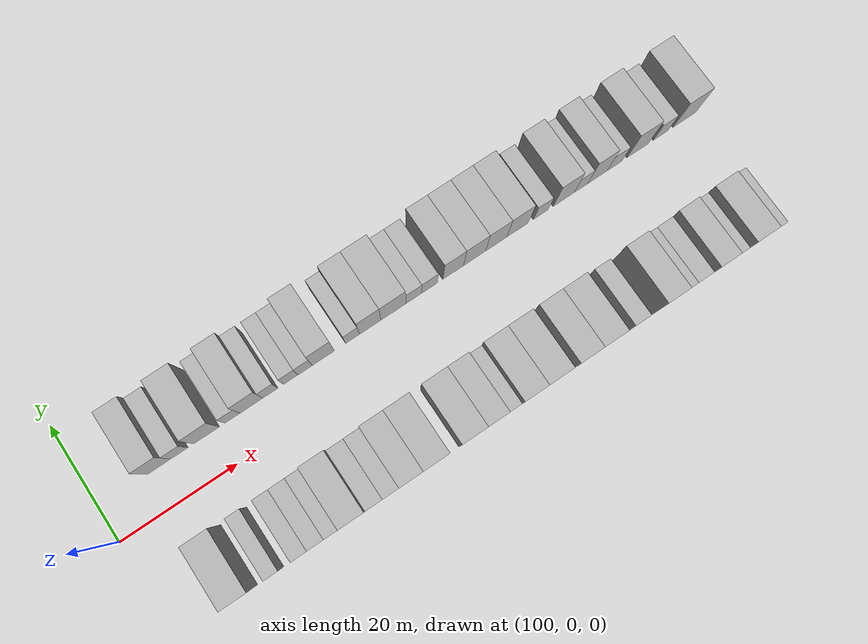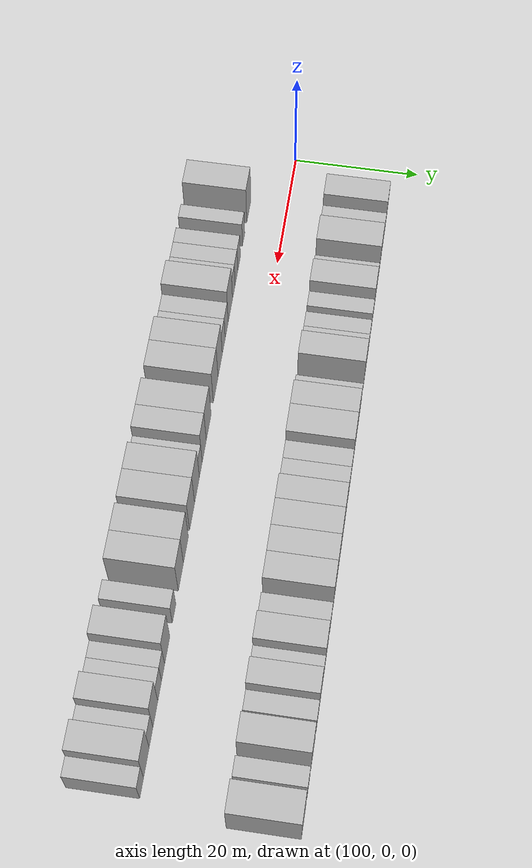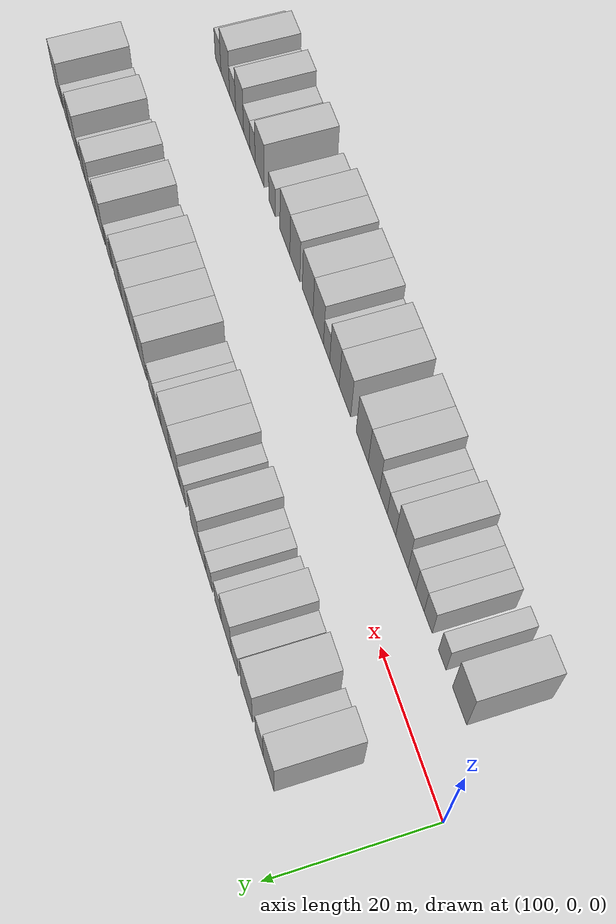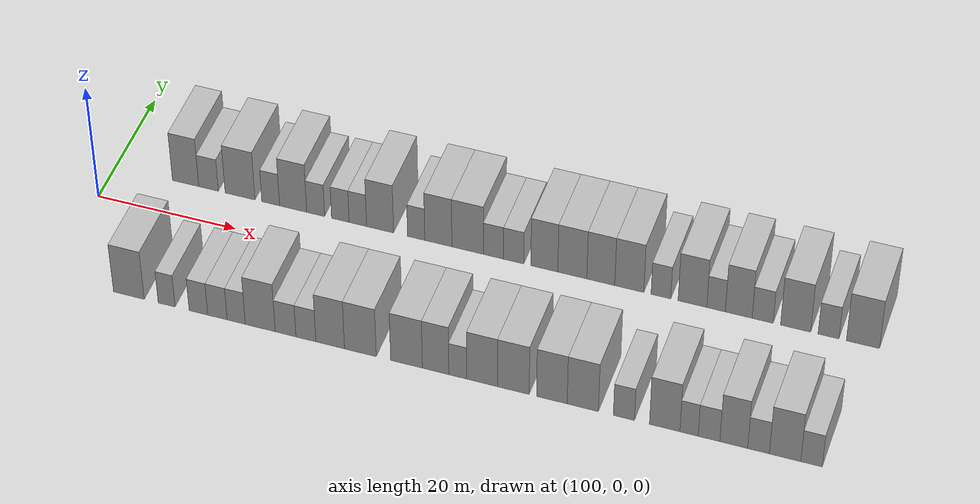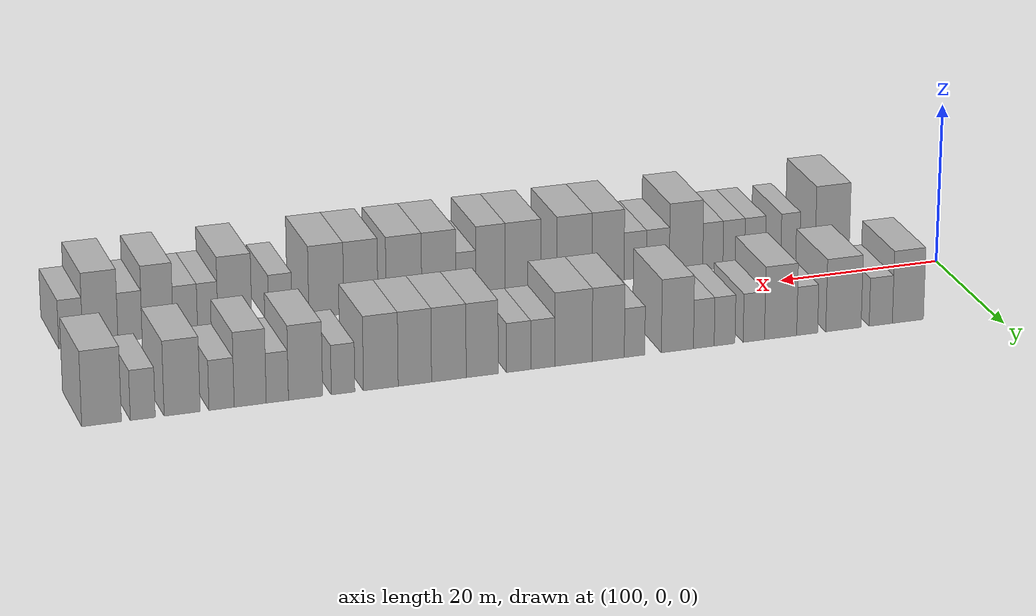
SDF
<sdf version="1.6">
 <world name="default">
  <model name="building_25">
   <static>1</static>
   <pose>110.3407 11.0000 0 0.000000 0.000000 1.570796</pose>
   <link name="link">
    <pose>0 0 4.50 0 0 0</pose>
    <collision name="collision"><geometry><box><size>10.0000 3.8856 9.0000</size></box></geometry></collision>
    <visual name="visual">
     <cast_shadows>0</cast_shadows>
     <geometry><box><size>10.0000 3.8856 9.0000</size></box></geometry>
     <material>
      <script>
       <uri>model://HANNAS_wall/materials/scripts</uri>
       <uri>model://HANNAS_wall/materials/textures</uri>
       <name>vrc/HANNAS_wall</name>
      </script>
     </material>
    </visual>
   </link>
  </model>
  <model name="building_26">
   <static>1</static>
   <pose>113.7288 11.0000 0 0.000000 0.000000 1.570796</pose>
   <link name="link">
    <pose>0 0 3.00 0 0 0</pose>
    <collision name="collision"><geometry><box><size>10.0000 2.8907 6.0000</size></box></geometry></collision>
    <visual name="visual">
     <cast_shadows>0</cast_shadows>
     <geometry><box><size>10.0000 2.8907 6.0000</size></box></geometry>
     <material>
      <script>
       <uri>model://HANNAS_wall/materials/scripts</uri>
       <uri>model://HANNAS_wall/materials/textures</uri>
       <name>vrc/HANNAS_wall</name>
      </script>
     </material>
    </visual>
   </link>
  </model>
  <model name="building_27">
   <static>1</static>
   <pose>118.3652 11.0000 0 0.000000 0.000000 1.570796</pose>
   <link name="link">
    <pose>0 0 4.50 0 0 0</pose>
    <collision name="collision"><geometry><box><size>10.0000 4.3821 9.0000</size></box></geometry></collision>
    <visual name="visual">
     <cast_shadows>0</cast_shadows>
     <geometry><box><size>10.0000 4.3821 9.0000</size></box></geometry>
     <material>
      <script>
       <uri>model://HANNAS_wall/materials/scripts</uri>
       <uri>model://HANNAS_wall/materials/textures</uri>
       <name>vrc/HANNAS_wall</name>
      </script>
     </material>
    </visual>
   </link>
  </model>
  <model name="building_28">
   <static>1</static>
   <pose>122.8509 11.0000 0 0.000000 0.000000 1.570796</pose>
   <link name="link">
    <pose>0 0 3.00 0 0 0</pose>
    <collision name="collision"><geometry><box><size>10.0000 2.5893 6.0000</size></box></geometry></collision>
    <visual name="visual">
     <cast_shadows>0</cast_shadows>
     <geometry><box><size>10.0000 2.5893 6.0000</size></box></geometry>
     <material>
      <script>
       <uri>model://HANNAS_wall/materials/scripts</uri>
       <uri>model://HANNAS_wall/materials/textures</uri>
       <name>vrc/HANNAS_wall</name>
      </script>
     </material>
    </visual>
   </link>
  </model>
  <model name="building_29">
   <static>1</static>
   <pose>126.1246 11.0000 0 0.000000 0.000000 1.570796</pose>
   <link name="link">
    <pose>0 0 4.50 0 0 0</pose>
    <collision name="collision"><geometry><box><size>10.0000 3.9582 9.0000</size></box></geometry></collision>
    <visual name="visual">
     <cast_shadows>0</cast_shadows>
     <geometry><box><size>10.0000 3.9582 9.0000</size></box></geometry>
     <material>
      <script>
       <uri>model://HANNAS_wall/materials/scripts</uri>
       <uri>model://HANNAS_wall/materials/textures</uri>
       <name>vrc/HANNAS_wall</name>
      </script>
     </material>
    </visual>
   </link>
  </model>
  <model name="building_30">
   <static>1</static>
   <pose>129.4086 11.0000 0 0.000000 0.000000 1.570796</pose>
   <link name="link">
    <pose>0 0 3.00 0 0 0</pose>
    <collision name="collision"><geometry><box><size>10.0000 2.6097 6.0000</size></box></geometry></collision>
    <visual name="visual">
     <cast_shadows>0</cast_shadows>
     <geometry><box><size>10.0000 2.6097 6.0000</size></box></geometry>
     <material>
      <script>
       <uri>model://HANNAS_wall/materials/scripts</uri>
       <uri>model://HANNAS_wall/materials/textures</uri>
       <name>vrc/HANNAS_wall</name>
      </script>
     </material>
    </visual>
   </link>
  </model>
  <model name="building_31">
   <static>1</static>
   <pose>132.9800 11.0000 0 0.000000 0.000000 1.570796</pose>
   <link name="link">
    <pose>0 0 3.00 0 0 0</pose>
    <collision name="collision"><geometry><box><size>10.0000 2.5331 6.0000</size></box></geometry></collision>
    <visual name="visual">
     <cast_shadows>0</cast_shadows>
     <geometry><box><size>10.0000 2.5331 6.0000</size></box></geometry>
     <material>
      <script>
       <uri>model://HANNAS_wall/materials/scripts</uri>
       <uri>model://HANNAS_wall/materials/textures</uri>
       <name>vrc/HANNAS_wall</name>
      </script>
     </material>
    </visual>
   </link>
  </model>
  <model name="building_32">
   <static>1</static>
   <pose>135.5073 11.0000 0 0.000000 0.000000 1.570796</pose>
   <link name="link">
    <pose>0 0 3.00 0 0 0</pose>
    <collision name="collision"><geometry><box><size>10.0000 2.5216 6.0000</size></box></geometry></collision>
    <visual name="visual">
     <cast_shadows>0</cast_shadows>
     <geometry><box><size>10.0000 2.5216 6.0000</size></box></geometry>
     <material>
      <script>
       <uri>model://HANNAS_wall/materials/scripts</uri>
       <uri>model://HANNAS_wall/materials/textures</uri>
       <name>vrc/HANNAS_wall</name>
      </script>
     </material>
    </visual>
   </link>
  </model>
  <model name="building_33">
   <static>1</static>
   <pose>138.7132 11.0000 0 0.000000 0.000000 1.570796</pose>
   <link name="link">
    <pose>0 0 4.50 0 0 0</pose>
    <collision name="collision"><geometry><box><size>10.0000 3.8902 9.0000</size></box></geometry></collision>
    <visual name="visual">
     <cast_shadows>0</cast_shadows>
     <geometry><box><size>10.0000 3.8902 9.0000</size></box></geometry>
     <material>
      <script>
       <uri>model://HANNAS_wall/materials/scripts</uri>
       <uri>model://HANNAS_wall/materials/textures</uri>
       <name>vrc/HANNAS_wall</name>
      </script>
     </material>
    </visual>
   </link>
  </model>
  <model name="building_34">
   <static>1</static>
   <pose>143.8912 11.0000 0 0.000000 0.000000 1.570796</pose>
   <link name="link">
    <pose>0 0 3.00 0 0 0</pose>
    <collision name="collision"><geometry><box><size>10.0000 2.4657 6.0000</size></box></geometry></collision>
    <visual name="visual">
     <cast_shadows>0</cast_shadows>
     <geometry><box><size>10.0000 2.4657 6.0000</size></box></geometry>
     <material>
      <script>
       <uri>model://HANNAS_wall/materials/scripts</uri>
       <uri>model://HANNAS_wall/materials/textures</uri>
       <name>vrc/HANNAS_wall</name>
      </script>
     </material>
    </visual>
   </link>
  </model>
  <model name="building_35">
   <static>1</static>
   <pose>147.0525 11.0000 0 0.000000 0.000000 1.570796</pose>
   <link name="link">
    <pose>0 0 4.50 0 0 0</pose>
    <collision name="collision"><geometry><box><size>10.0000 3.8570 9.0000</size></box></geometry></collision>
    <visual name="visual">
     <cast_shadows>0</cast_shadows>
     <geometry><box><size>10.0000 3.8570 9.0000</size></box></geometry>
     <material>
      <script>
       <uri>model://HANNAS_wall/materials/scripts</uri>
       <uri>model://HANNAS_wall/materials/textures</uri>
       <name>vrc/HANNAS_wall</name>
      </script>
     </material>
    </visual>
   </link>
  </model>
  <model name="building_36">
   <static>1</static>
   <pose>151.2220 11.0000 0 0.000000 0.000000 1.570796</pose>
   <link name="link">
    <pose>0 0 4.50 0 0 0</pose>
    <collision name="collision"><geometry><box><size>10.0000 4.4820 9.0000</size></box></geometry></collision>
    <visual name="visual">
     <cast_shadows>0</cast_shadows>
     <geometry><box><size>10.0000 4.4820 9.0000</size></box></geometry>
     <material>
      <script>
       <uri>model://HANNAS_wall/materials/scripts</uri>
       <uri>model://HANNAS_wall/materials/textures</uri>
       <name>vrc/HANNAS_wall</name>
      </script>
     </material>
    </visual>
   </link>
  </model>
  <model name="building_37">
   <static>1</static>
   <pose>154.8846 11.0000 0 0.000000 0.000000 1.570796</pose>
   <link name="link">
    <pose>0 0 3.00 0 0 0</pose>
    <collision name="collision"><geometry><box><size>10.0000 2.8432 6.0000</size></box></geometry></collision>
    <visual name="visual">
     <cast_shadows>0</cast_shadows>
     <geometry><box><size>10.0000 2.8432 6.0000</size></box></geometry>
     <material>
      <script>
       <uri>model://HANNAS_wall/materials/scripts</uri>
       <uri>model://HANNAS_wall/materials/textures</uri>
       <name>vrc/HANNAS_wall</name>
      </script>
     </material>
    </visual>
   </link>
  </model>
  <model name="building_38">
   <static>1</static>
   <pose>157.7415 11.0000 0 0.000000 0.000000 1.570796</pose>
   <link name="link">
    <pose>0 0 3.00 0 0 0</pose>
    <collision name="collision"><geometry><box><size>10.0000 2.8707 6.0000</size></box></geometry></collision>
    <visual name="visual">
     <cast_shadows>0</cast_shadows>
     <geometry><box><size>10.0000 2.8707 6.0000</size></box></geometry>
     <material>
      <script>
       <uri>model://HANNAS_wall/materials/scripts</uri>
       <uri>model://HANNAS_wall/materials/textures</uri>
       <name>vrc/HANNAS_wall</name>
      </script>
     </material>
    </visual>
   </link>
  </model>
  <model name="building_39">
   <static>1</static>
   <pose>162.0608 11.0000 0 0.000000 0.000000 1.570796</pose>
   <link name="link">
    <pose>0 0 4.50 0 0 0</pose>
    <collision name="collision"><geometry><box><size>10.0000 3.7678 9.0000</size></box></geometry></collision>
    <visual name="visual">
     <cast_shadows>0</cast_shadows>
     <geometry><box><size>10.0000 3.7678 9.0000</size></box></geometry>
     <material>
      <script>
       <uri>model://HANNAS_wall/materials/scripts</uri>
       <uri>model://HANNAS_wall/materials/textures</uri>
       <name>vrc/HANNAS_wall</name>
      </script>
     </material>
    </visual>
   </link>
  </model>
  <model name="building_40">
   <static>1</static>
   <pose>165.9803 11.0000 0 0.000000 0.000000 1.570796</pose>
   <link name="link">
    <pose>0 0 4.50 0 0 0</pose>
    <collision name="collision"><geometry><box><size>10.0000 4.0713 9.0000</size></box></geometry></collision>
    <visual name="visual">
     <cast_shadows>0</cast_shadows>
     <geometry><box><size>10.0000 4.0713 9.0000</size></box></geometry>
     <material>
      <script>
       <uri>model://HANNAS_wall/materials/scripts</uri>
       <uri>model://HANNAS_wall/materials/textures</uri>
       <name>vrc/HANNAS_wall</name>
      </script>
     </material>
    </visual>
   </link>
  </model>
  <model name="building_41">
   <static>1</static>
   <pose>169.9663 11.0000 0 0.000000 0.000000 1.570796</pose>
   <link name="link">
    <pose>0 0 4.50 0 0 0</pose>
    <collision name="collision"><geometry><box><size>10.0000 3.9006 9.0000</size></box></geometry></collision>
    <visual name="visual">
     <cast_shadows>0</cast_shadows>
     <geometry><box><size>10.0000 3.9006 9.0000</size></box></geometry>
     <material>
      <script>
       <uri>model://HANNAS_wall/materials/scripts</uri>
       <uri>model://HANNAS_wall/materials/textures</uri>
       <name>vrc/HANNAS_wall</name>
      </script>
     </material>
    </visual>
   </link>
  </model>
  <model name="building_42">
   <static>1</static>
   <pose>173.9365 11.0000 0 0.000000 0.000000 1.570796</pose>
   <link name="link">
    <pose>0 0 4.50 0 0 0</pose>
    <collision name="collision"><geometry><box><size>10.0000 4.0397 9.0000</size></box></geometry></collision>
    <visual name="visual">
     <cast_shadows>0</cast_shadows>
     <geometry><box><size>10.0000 4.0397 9.0000</size></box></geometry>
     <material>
      <script>
       <uri>model://HANNAS_wall/materials/scripts</uri>
       <uri>model://HANNAS_wall/materials/textures</uri>
       <name>vrc/HANNAS_wall</name>
      </script>
     </material>
    </visual>
   </link>
  </model>
  <model name="building_43">
   <static>1</static>
   <pose>178.3204 11.0000 0 0.000000 0.000000 1.570796</pose>
   <link name="link">
    <pose>0 0 3.00 0 0 0</pose>
    <collision name="collision"><geometry><box><size>10.0000 2.7282 6.0000</size></box></geometry></collision>
    <visual name="visual">
     <cast_shadows>0</cast_shadows>
     <geometry><box><size>10.0000 2.7282 6.0000</size></box></geometry>
     <material>
      <script>
       <uri>model://HANNAS_wall/materials/scripts</uri>
       <uri>model://HANNAS_wall/materials/textures</uri>
       <name>vrc/HANNAS_wall</name>
      </script>
     </material>
    </visual>
   </link>
  </model>
  <model name="building_44">
   <static>1</static>
   <pose>182.6560 11.0000 0 0.000000 0.000000 1.570796</pose>
   <link name="link">
    <pose>0 0 4.50 0 0 0</pose>
    <collision name="collision"><geometry><box><size>10.0000 3.9429 9.0000</size></box></geometry></collision>
    <visual name="visual">
     <cast_shadows>0</cast_shadows>
     <geometry><box><size>10.0000 3.9429 9.0000</size></box></geometry>
     <material>
      <script>
       <uri>model://HANNAS_wall/materials/scripts</uri>
       <uri>model://HANNAS_wall/materials/textures</uri>
       <name>vrc/HANNAS_wall</name>
      </script>
     </material>
    </visual>
   </link>
  </model>
  <model name="building_45">
   <static>1</static>
   <pose>185.9031 11.0000 0 0.000000 0.000000 1.570796</pose>
   <link name="link">
    <pose>0 0 3.00 0 0 0</pose>
    <collision name="collision"><geometry><box><size>10.0000 2.5512 6.0000</size></box></geometry></collision>
    <visual name="visual">
     <cast_shadows>0</cast_shadows>
     <geometry><box><size>10.0000 2.5512 6.0000</size></box></geometry>
     <material>
      <script>
       <uri>model://HANNAS_wall/materials/scripts</uri>
       <uri>model://HANNAS_wall/materials/textures</uri>
       <name>vrc/HANNAS_wall</name>
      </script>
     </material>
    </visual>
   </link>
  </model>
  <model name="building_46">
   <static>1</static>
   <pose>189.0134 11.0000 0 0.000000 0.000000 1.570796</pose>
   <link name="link">
    <pose>0 0 4.50 0 0 0</pose>
    <collision name="collision"><geometry><box><size>10.0000 3.6694 9.0000</size></box></geometry></collision>
    <visual name="visual">
     <cast_shadows>0</cast_shadows>
     <geometry><box><size>10.0000 3.6694 9.0000</size></box></geometry>
     <material>
      <script>
       <uri>model://HANNAS_wall/materials/scripts</uri>
       <uri>model://HANNAS_wall/materials/textures</uri>
       <name>vrc/HANNAS_wall</name>
      </script>
     </material>
    </visual>
   </link>
  </model>
  <model name="building_47">
   <static>1</static>
   <pose>192.2828 11.0000 0 0.000000 0.000000 1.570796</pose>
   <link name="link">
    <pose>0 0 3.00 0 0 0</pose>
    <collision name="collision"><geometry><box><size>10.0000 2.8692 6.0000</size></box></geometry></collision>
    <visual name="visual">
     <cast_shadows>0</cast_shadows>
     <geometry><box><size>10.0000 2.8692 6.0000</size></box></geometry>
     <material>
      <script>
       <uri>model://HANNAS_wall/materials/scripts</uri>
       <uri>model://HANNAS_wall/materials/textures</uri>
       <name>vrc/HANNAS_wall</name>
      </script>
     </material>
    </visual>
   </link>
  </model>
  <model name="building_48">
   <static>1</static>
   <pose>196.7626 11.0000 0 0.000000 0.000000 1.570796</pose>
   <link name="link">
    <pose>0 0 4.50 0 0 0</pose>
    <collision name="collision"><geometry><box><size>10.0000 4.0905 9.0000</size></box></geometry></collision>
    <visual name="visual">
     <cast_shadows>0</cast_shadows>
     <geometry><box><size>10.0000 4.0905 9.0000</size></box></geometry>
     <material>
      <script>
       <uri>model://HANNAS_wall/materials/scripts</uri>
       <uri>model://HANNAS_wall/materials/textures</uri>
       <name>vrc/HANNAS_wall</name>
      </script>
     </material>
    </visual>
   </link>
  </model>
  <model name="building_49">
   <static>1</static>
   <pose>201.2171 11.0000 0 0.000000 0.000000 1.570796</pose>
   <link name="link">
    <pose>0 0 3.00 0 0 0</pose>
    <collision name="collision"><geometry><box><size>10.0000 2.8185 6.0000</size></box></geometry></collision>
    <visual name="visual">
     <cast_shadows>0</cast_shadows>
     <geometry><box><size>10.0000 2.8185 6.0000</size></box></geometry>
     <material>
      <script>
       <uri>model://HANNAS_wall/materials/scripts</uri>
       <uri>model://HANNAS_wall/materials/textures</uri>
       <name>vrc/HANNAS_wall</name>
      </script>
     </material>
    </visual>
   </link>
  </model>
  <model name="building_50">
   <static>1</static>
   <pose>205.8533 11.0000 0 0.000000 0.000000 1.570796</pose>
   <link name="link">
    <pose>0 0 4.50 0 0 0</pose>
    <collision name="collision"><geometry><box><size>10.0000 4.4539 9.0000</size></box></geometry></collision>
    <visual name="visual">
     <cast_shadows>0</cast_shadows>
     <geometry><box><size>10.0000 4.4539 9.0000</size></box></geometry>
     <material>
      <script>
       <uri>model://HANNAS_wall/materials/scripts</uri>
       <uri>model://HANNAS_wall/materials/textures</uri>
       <name>vrc/HANNAS_wall</name>
      </script>
     </material>
    </visual>
   </link>
  </model>
  <model name="building_77">
   <static>1</static>
   <pose>111.1430 -11.0000 0 0.000000 0.000000 1.570796</pose>
   <link name="link">
    <pose>0 0 4.50 0 0 0</pose>
    <collision name="collision"><geometry><box><size>10.0000 4.4046 9.0000</size></box></geometry></collision>
    <visual name="visual">
     <cast_shadows>0</cast_shadows>
     <geometry><box><size>10.0000 4.4046 9.0000</size></box></geometry>
     <material>
      <script>
       <uri>model://HANNAS_wall/materials/scripts</uri>
       <uri>model://HANNAS_wall/materials/textures</uri>
       <name>vrc/HANNAS_wall</name>
      </script>
     </material>
    </visual>
   </link>
  </model>
  <model name="building_78">
   <static>1</static>
   <pose>116.5526 -11.0000 0 0.000000 0.000000 1.570796</pose>
   <link name="link">
    <pose>0 0 3.00 0 0 0</pose>
    <collision name="collision"><geometry><box><size>10.0000 2.4148 6.0000</size></box></geometry></collision>
    <visual name="visual">
     <cast_shadows>0</cast_shadows>
     <geometry><box><size>10.0000 2.4148 6.0000</size></box></geometry>
     <material>
      <script>
       <uri>model://HANNAS_wall/materials/scripts</uri>
       <uri>model://HANNAS_wall/materials/textures</uri>
       <name>vrc/HANNAS_wall</name>
      </script>
     </material>
    </visual>
   </link>
  </model>
  <model name="building_79">
   <static>1</static>
   <pose>121.0814 -11.0000 0 0.000000 0.000000 1.570796</pose>
   <link name="link">
    <pose>0 0 3.00 0 0 0</pose>
    <collision name="collision"><geometry><box><size>10.0000 2.6427 6.0000</size></box></geometry></collision>
    <visual name="visual">
     <cast_shadows>0</cast_shadows>
     <geometry><box><size>10.0000 2.6427 6.0000</size></box></geometry>
     <material>
      <script>
       <uri>model://HANNAS_wall/materials/scripts</uri>
       <uri>model://HANNAS_wall/materials/textures</uri>
       <name>vrc/HANNAS_wall</name>
      </script>
     </material>
    </visual>
   </link>
  </model>
  <model name="building_80">
   <static>1</static>
   <pose>123.7760 -11.0000 0 0.000000 0.000000 1.570796</pose>
   <link name="link">
    <pose>0 0 3.00 0 0 0</pose>
    <collision name="collision"><geometry><box><size>10.0000 2.7464 6.0000</size></box></geometry></collision>
    <visual name="visual">
     <cast_shadows>0</cast_shadows>
     <geometry><box><size>10.0000 2.7464 6.0000</size></box></geometry>
     <material>
      <script>
       <uri>model://HANNAS_wall/materials/scripts</uri>
       <uri>model://HANNAS_wall/materials/textures</uri>
       <name>vrc/HANNAS_wall</name>
      </script>
     </material>
    </visual>
   </link>
  </model>
  <model name="building_81">
   <static>1</static>
   <pose>126.4346 -11.0000 0 0.000000 0.000000 1.570796</pose>
   <link name="link">
    <pose>0 0 3.00 0 0 0</pose>
    <collision name="collision"><geometry><box><size>10.0000 2.5707 6.0000</size></box></geometry></collision>
    <visual name="visual">
     <cast_shadows>0</cast_shadows>
     <geometry><box><size>10.0000 2.5707 6.0000</size></box></geometry>
     <material>
      <script>
       <uri>model://HANNAS_wall/materials/scripts</uri>
       <uri>model://HANNAS_wall/materials/textures</uri>
       <name>vrc/HANNAS_wall</name>
      </script>
     </material>
    </visual>
   </link>
  </model>
  <model name="building_82">
   <static>1</static>
   <pose>129.8304 -11.0000 0 0.000000 0.000000 1.570796</pose>
   <link name="link">
    <pose>0 0 4.50 0 0 0</pose>
    <collision name="collision"><geometry><box><size>10.0000 4.2210 9.0000</size></box></geometry></collision>
    <visual name="visual">
     <cast_shadows>0</cast_shadows>
     <geometry><box><size>10.0000 4.2210 9.0000</size></box></geometry>
     <material>
      <script>
       <uri>model://HANNAS_wall/materials/scripts</uri>
       <uri>model://HANNAS_wall/materials/textures</uri>
       <name>vrc/HANNAS_wall</name>
      </script>
     </material>
    </visual>
   </link>
  </model>
  <model name="building_83">
   <static>1</static>
   <pose>133.3924 -11.0000 0 0.000000 0.000000 1.570796</pose>
   <link name="link">
    <pose>0 0 3.00 0 0 0</pose>
    <collision name="collision"><geometry><box><size>10.0000 2.9031 6.0000</size></box></geometry></collision>
    <visual name="visual">
     <cast_shadows>0</cast_shadows>
     <geometry><box><size>10.0000 2.9031 6.0000</size></box></geometry>
     <material>
      <script>
       <uri>model://HANNAS_wall/materials/scripts</uri>
       <uri>model://HANNAS_wall/materials/textures</uri>
       <name>vrc/HANNAS_wall</name>
      </script>
     </material>
    </visual>
   </link>
  </model>
  <model name="building_84">
   <static>1</static>
   <pose>136.2384 -11.0000 0 0.000000 0.000000 1.570796</pose>
   <link name="link">
    <pose>0 0 3.00 0 0 0</pose>
    <collision name="collision"><geometry><box><size>10.0000 2.7888 6.0000</size></box></geometry></collision>
    <visual name="visual">
     <cast_shadows>0</cast_shadows>
     <geometry><box><size>10.0000 2.7888 6.0000</size></box></geometry>
     <material>
      <script>
       <uri>model://HANNAS_wall/materials/scripts</uri>
       <uri>model://HANNAS_wall/materials/textures</uri>
       <name>vrc/HANNAS_wall</name>
      </script>
     </material>
    </visual>
   </link>
  </model>
  <model name="building_85">
   <static>1</static>
   <pose>139.6338 -11.0000 0 0.000000 0.000000 1.570796</pose>
   <link name="link">
    <pose>0 0 4.50 0 0 0</pose>
    <collision name="collision"><geometry><box><size>10.0000 4.0020 9.0000</size></box></geometry></collision>
    <visual name="visual">
     <cast_shadows>0</cast_shadows>
     <geometry><box><size>10.0000 4.0020 9.0000</size></box></geometry>
     <material>
      <script>
       <uri>model://HANNAS_wall/materials/scripts</uri>
       <uri>model://HANNAS_wall/materials/textures</uri>
       <name>vrc/HANNAS_wall</name>
      </script>
     </material>
    </visual>
   </link>
  </model>
  <model name="building_86">
   <static>1</static>
   <pose>143.8363 -11.0000 0 0.000000 0.000000 1.570796</pose>
   <link name="link">
    <pose>0 0 4.50 0 0 0</pose>
    <collision name="collision"><geometry><box><size>10.0000 4.4031 9.0000</size></box></geometry></collision>
    <visual name="visual">
     <cast_shadows>0</cast_shadows>
     <geometry><box><size>10.0000 4.4031 9.0000</size></box></geometry>
     <material>
      <script>
       <uri>model://HANNAS_wall/materials/scripts</uri>
       <uri>model://HANNAS_wall/materials/textures</uri>
       <name>vrc/HANNAS_wall</name>
      </script>
     </material>
    </visual>
   </link>
  </model>
  <model name="building_87">
   <static>1</static>
   <pose>150.2274 -11.0000 0 0.000000 0.000000 1.570796</pose>
   <link name="link">
    <pose>0 0 4.50 0 0 0</pose>
    <collision name="collision"><geometry><box><size>10.0000 4.3790 9.0000</size></box></geometry></collision>
    <visual name="visual">
     <cast_shadows>0</cast_shadows>
     <geometry><box><size>10.0000 4.3790 9.0000</size></box></geometry>
     <material>
      <script>
       <uri>model://HANNAS_wall/materials/scripts</uri>
       <uri>model://HANNAS_wall/materials/textures</uri>
       <name>vrc/HANNAS_wall</name>
      </script>
     </material>
    </visual>
   </link>
  </model>
  <model name="building_88">
   <static>1</static>
   <pose>154.2292 -11.0000 0 0.000000 0.000000 1.570796</pose>
   <link name="link">
    <pose>0 0 4.50 0 0 0</pose>
    <collision name="collision"><geometry><box><size>10.0000 3.6248 9.0000</size></box></geometry></collision>
    <visual name="visual">
     <cast_shadows>0</cast_shadows>
     <geometry><box><size>10.0000 3.6248 9.0000</size></box></geometry>
     <material>
      <script>
       <uri>model://HANNAS_wall/materials/scripts</uri>
       <uri>model://HANNAS_wall/materials/textures</uri>
       <name>vrc/HANNAS_wall</name>
      </script>
     </material>
    </visual>
   </link>
  </model>
  <model name="building_89">
   <static>1</static>
   <pose>157.2726 -11.0000 0 0.000000 0.000000 1.570796</pose>
   <link name="link">
    <pose>0 0 3.00 0 0 0</pose>
    <collision name="collision"><geometry><box><size>10.0000 2.4621 6.0000</size></box></geometry></collision>
    <visual name="visual">
     <cast_shadows>0</cast_shadows>
     <geometry><box><size>10.0000 2.4621 6.0000</size></box></geometry>
     <material>
      <script>
       <uri>model://HANNAS_wall/materials/scripts</uri>
       <uri>model://HANNAS_wall/materials/textures</uri>
       <name>vrc/HANNAS_wall</name>
      </script>
     </material>
    </visual>
   </link>
  </model>
  <model name="building_90">
   <static>1</static>
   <pose>160.5887 -11.0000 0 0.000000 0.000000 1.570796</pose>
   <link name="link">
    <pose>0 0 4.50 0 0 0</pose>
    <collision name="collision"><geometry><box><size>10.0000 4.1700 9.0000</size></box></geometry></collision>
    <visual name="visual">
     <cast_shadows>0</cast_shadows>
     <geometry><box><size>10.0000 4.1700 9.0000</size></box></geometry>
     <material>
      <script>
       <uri>model://HANNAS_wall/materials/scripts</uri>
       <uri>model://HANNAS_wall/materials/textures</uri>
       <name>vrc/HANNAS_wall</name>
      </script>
     </material>
    </visual>
   </link>
  </model>
  <model name="building_91">
   <static>1</static>
   <pose>164.8384 -11.0000 0 0.000000 0.000000 1.570796</pose>
   <link name="link">
    <pose>0 0 4.50 0 0 0</pose>
    <collision name="collision"><geometry><box><size>10.0000 4.3294 9.0000</size></box></geometry></collision>
    <visual name="visual">
     <cast_shadows>0</cast_shadows>
     <geometry><box><size>10.0000 4.3294 9.0000</size></box></geometry>
     <material>
      <script>
       <uri>model://HANNAS_wall/materials/scripts</uri>
       <uri>model://HANNAS_wall/materials/textures</uri>
       <name>vrc/HANNAS_wall</name>
      </script>
     </material>
    </visual>
   </link>
  </model>
  <model name="building_92">
   <static>1</static>
   <pose>170.0711 -11.0000 0 0.000000 0.000000 1.570796</pose>
   <link name="link">
    <pose>0 0 4.50 0 0 0</pose>
    <collision name="collision"><geometry><box><size>10.0000 4.1360 9.0000</size></box></geometry></collision>
    <visual name="visual">
     <cast_shadows>0</cast_shadows>
     <geometry><box><size>10.0000 4.1360 9.0000</size></box></geometry>
     <material>
      <script>
       <uri>model://HANNAS_wall/materials/scripts</uri>
       <uri>model://HANNAS_wall/materials/textures</uri>
       <name>vrc/HANNAS_wall</name>
      </script>
     </material>
    </visual>
   </link>
  </model>
  <model name="building_93">
   <static>1</static>
   <pose>174.2470 -11.0000 0 0.000000 0.000000 1.570796</pose>
   <link name="link">
    <pose>0 0 4.50 0 0 0</pose>
    <collision name="collision"><geometry><box><size>10.0000 4.2157 9.0000</size></box></geometry></collision>
    <visual name="visual">
     <cast_shadows>0</cast_shadows>
     <geometry><box><size>10.0000 4.2157 9.0000</size></box></geometry>
     <material>
      <script>
       <uri>model://HANNAS_wall/materials/scripts</uri>
       <uri>model://HANNAS_wall/materials/textures</uri>
       <name>vrc/HANNAS_wall</name>
      </script>
     </material>
    </visual>
   </link>
  </model>
  <model name="building_94">
   <static>1</static>
   <pose>179.7655 -11.0000 0 0.000000 0.000000 1.570796</pose>
   <link name="link">
    <pose>0 0 3.00 0 0 0</pose>
    <collision name="collision"><geometry><box><size>10.0000 2.8214 6.0000</size></box></geometry></collision>
    <visual name="visual">
     <cast_shadows>0</cast_shadows>
     <geometry><box><size>10.0000 2.8214 6.0000</size></box></geometry>
     <material>
      <script>
       <uri>model://HANNAS_wall/materials/scripts</uri>
       <uri>model://HANNAS_wall/materials/textures</uri>
       <name>vrc/HANNAS_wall</name>
      </script>
     </material>
    </visual>
   </link>
  </model>
  <model name="building_95">
   <static>1</static>
   <pose>185.1986 -11.0000 0 0.000000 0.000000 1.570796</pose>
   <link name="link">
    <pose>0 0 4.50 0 0 0</pose>
    <collision name="collision"><geometry><box><size>10.0000 4.0448 9.0000</size></box></geometry></collision>
    <visual name="visual">
     <cast_shadows>0</cast_shadows>
     <geometry><box><size>10.0000 4.0448 9.0000</size></box></geometry>
     <material>
      <script>
       <uri>model://HANNAS_wall/materials/scripts</uri>
       <uri>model://HANNAS_wall/materials/textures</uri>
       <name>vrc/HANNAS_wall</name>
      </script>
     </material>
    </visual>
   </link>
  </model>
  <model name="building_96">
   <static>1</static>
   <pose>188.4302 -11.0000 0 0.000000 0.000000 1.570796</pose>
   <link name="link">
    <pose>0 0 3.00 0 0 0</pose>
    <collision name="collision"><geometry><box><size>10.0000 2.4184 6.0000</size></box></geometry></collision>
    <visual name="visual">
     <cast_shadows>0</cast_shadows>
     <geometry><box><size>10.0000 2.4184 6.0000</size></box></geometry>
     <material>
      <script>
       <uri>model://HANNAS_wall/materials/scripts</uri>
       <uri>model://HANNAS_wall/materials/textures</uri>
       <name>vrc/HANNAS_wall</name>
      </script>
     </material>
    </visual>
   </link>
  </model>
  <model name="building_97">
   <static>1</static>
   <pose>191.0744 -11.0000 0 0.000000 0.000000 1.570796</pose>
   <link name="link">
    <pose>0 0 3.00 0 0 0</pose>
    <collision name="collision"><geometry><box><size>10.0000 2.8701 6.0000</size></box></geometry></collision>
    <visual name="visual">
     <cast_shadows>0</cast_shadows>
     <geometry><box><size>10.0000 2.8701 6.0000</size></box></geometry>
     <material>
      <script>
       <uri>model://HANNAS_wall/materials/scripts</uri>
       <uri>model://HANNAS_wall/materials/textures</uri>
       <name>vrc/HANNAS_wall</name>
      </script>
     </material>
    </visual>
   </link>
  </model>
  <model name="building_98">
   <static>1</static>
   <pose>194.3472 -11.0000 0 0.000000 0.000000 1.570796</pose>
   <link name="link">
    <pose>0 0 4.50 0 0 0</pose>
    <collision name="collision"><geometry><box><size>10.0000 3.6755 9.0000</size></box></geometry></collision>
    <visual name="visual">
     <cast_shadows>0</cast_shadows>
     <geometry><box><size>10.0000 3.6755 9.0000</size></box></geometry>
     <material>
      <script>
       <uri>model://HANNAS_wall/materials/scripts</uri>
       <uri>model://HANNAS_wall/materials/textures</uri>
       <name>vrc/HANNAS_wall</name>
      </script>
     </material>
    </visual>
   </link>
  </model>
  <model name="building_99">
   <static>1</static>
   <pose>197.6040 -11.0000 0 0.000000 0.000000 1.570796</pose>
   <link name="link">
    <pose>0 0 3.00 0 0 0</pose>
    <collision name="collision"><geometry><box><size>10.0000 2.8382 6.0000</size></box></geometry></collision>
    <visual name="visual">
     <cast_shadows>0</cast_shadows>
     <geometry><box><size>10.0000 2.8382 6.0000</size></box></geometry>
     <material>
      <script>
       <uri>model://HANNAS_wall/materials/scripts</uri>
       <uri>model://HANNAS_wall/materials/textures</uri>
       <name>vrc/HANNAS_wall</name>
      </script>
     </material>
    </visual>
   </link>
  </model>
  <model name="building_100">
   <static>1</static>
   <pose>201.0825 -11.0000 0 0.000000 0.000000 1.570796</pose>
   <link name="link">
    <pose>0 0 4.50 0 0 0</pose>
    <collision name="collision"><geometry><box><size>10.0000 4.1187 9.0000</size></box></geometry></collision>
    <visual name="visual">
     <cast_shadows>0</cast_shadows>
     <geometry><box><size>10.0000 4.1187 9.0000</size></box></geometry>
     <material>
      <script>
       <uri>model://HANNAS_wall/materials/scripts</uri>
       <uri>model://HANNAS_wall/materials/textures</uri>
       <name>vrc/HANNAS_wall</name>
      </script>
     </material>
    </visual>
   </link>
  </model>
  <model name="building_101">
   <static>1</static>
   <pose>204.5420 -11.0000 0 0.000000 0.000000 1.570796</pose>
   <link name="link">
    <pose>0 0 3.00 0 0 0</pose>
    <collision name="collision"><geometry><box><size>10.0000 2.8003 6.0000</size></box></geometry></collision>
    <visual name="visual">
     <cast_shadows>0</cast_shadows>
     <geometry><box><size>10.0000 2.8003 6.0000</size></box></geometry>
     <material>
      <script>
       <uri>model://HANNAS_wall/materials/scripts</uri>
       <uri>model://HANNAS_wall/materials/textures</uri>
       <name>vrc/HANNAS_wall</name>
      </script>
     </material>
    </visual>
   </link>
  </model>
 </world>
</sdf>
